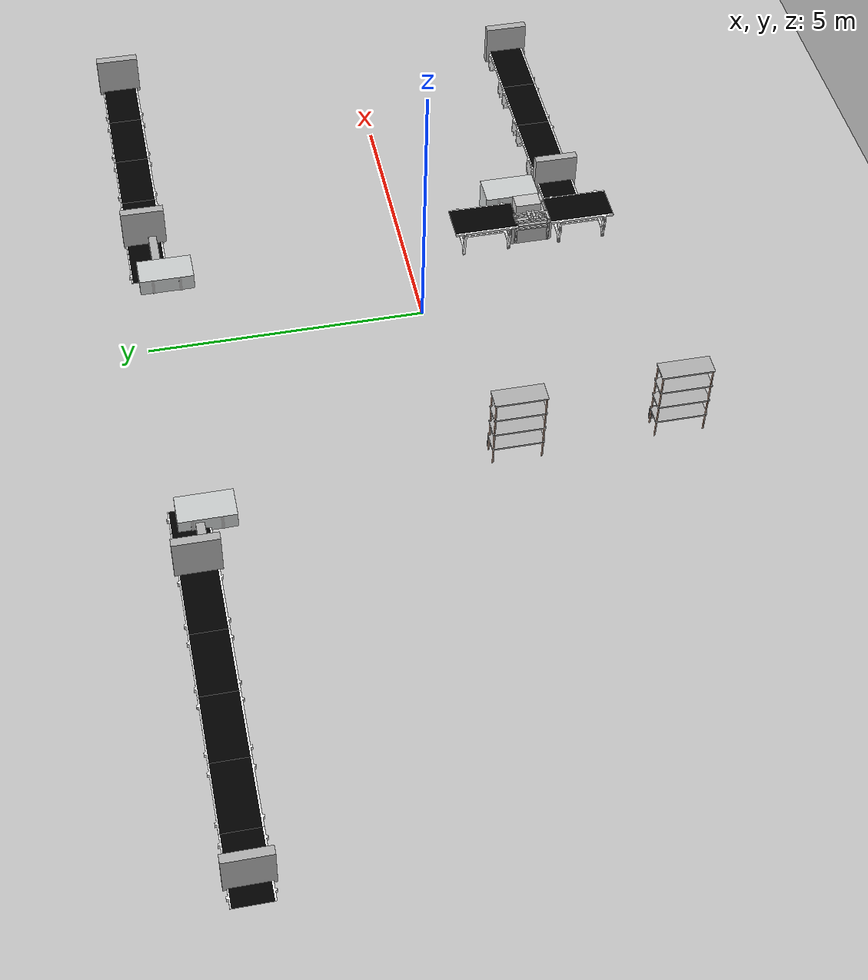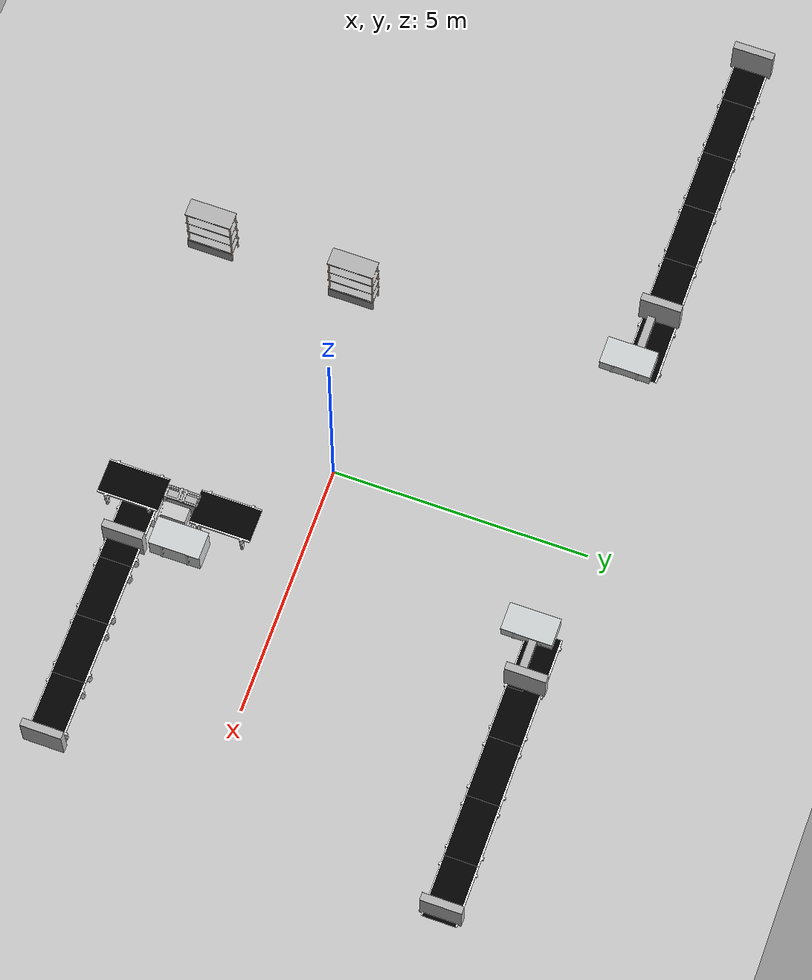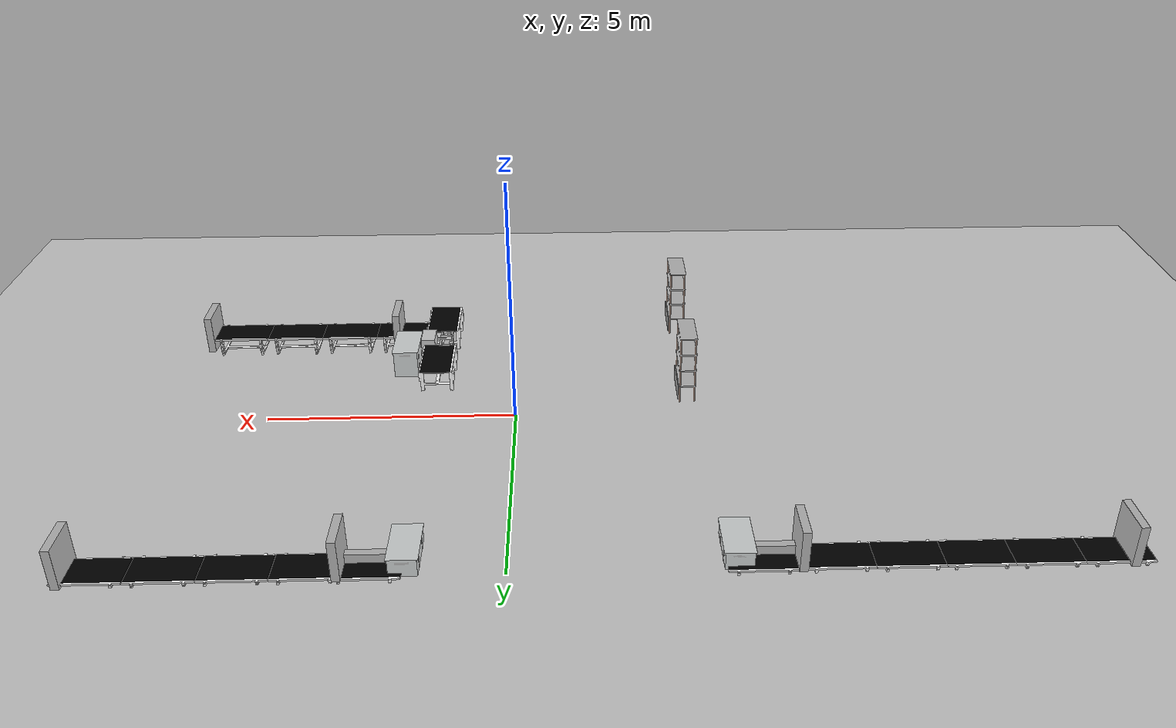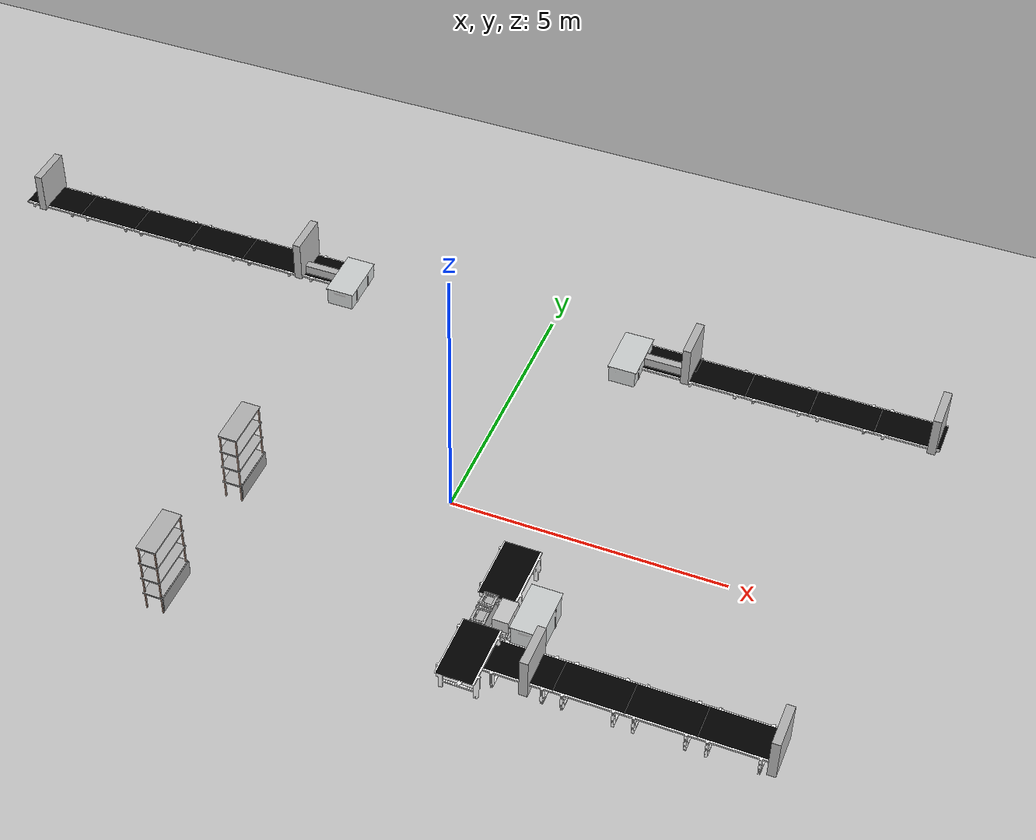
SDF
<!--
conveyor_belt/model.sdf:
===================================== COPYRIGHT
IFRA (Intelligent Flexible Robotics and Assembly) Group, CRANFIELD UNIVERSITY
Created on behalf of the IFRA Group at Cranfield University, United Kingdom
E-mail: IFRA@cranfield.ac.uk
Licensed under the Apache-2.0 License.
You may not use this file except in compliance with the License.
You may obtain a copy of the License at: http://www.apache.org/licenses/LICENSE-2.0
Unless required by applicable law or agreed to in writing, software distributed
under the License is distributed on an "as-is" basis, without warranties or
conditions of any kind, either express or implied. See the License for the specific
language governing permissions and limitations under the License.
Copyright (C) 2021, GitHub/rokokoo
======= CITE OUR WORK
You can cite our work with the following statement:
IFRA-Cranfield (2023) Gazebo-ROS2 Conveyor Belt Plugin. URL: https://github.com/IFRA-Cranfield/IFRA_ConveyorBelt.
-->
<sdf version="1.6">
 <world name="default">
  <light name="light0" type="directional">
   <pose>0 -18.818 8 0.75 -0 0</pose>
   <diffuse>0.5 0.5 0.5 1</diffuse>
   <specular>0.1 0.1 0.1 1</specular>
   <direction>0.1 0.1 -0.9</direction>
   <attenuation>
    <range>20</range>
    <constant>0.5</constant>
    <linear>0.01</linear>
    <quadratic>0.001</quadratic>
   </attenuation>
   <cast_shadows>0</cast_shadows>
  </light>
  <light name="light3" type="directional">
   <pose>3.9239 1.64974 4 0 1.2 0</pose>
   <diffuse>0.5 0.5 0.5 1</diffuse>
   <specular>0.1 0.1 0.1 1</specular>
   <direction>0.1 0.1 -0.9</direction>
   <attenuation>
    <range>20</range>
    <constant>0.5</constant>
    <linear>0.01</linear>
    <quadratic>0.001</quadratic>
   </attenuation>
   <cast_shadows>0</cast_shadows>
  </light>
  <light name="light5" type="directional">
   <pose>0.454419 12.4783 5 -0.8 0 0</pose>
   <diffuse>0.5 0.5 0.5 1</diffuse>
   <specular>0.1 0.1 0.1 1</specular>
   <direction>0.1 0.1 -0.9</direction>
   <attenuation>
    <range>20</range>
    <constant>0.5</constant>
    <linear>0.01</linear>
    <quadratic>0.001</quadratic>
   </attenuation>
   <cast_shadows>0</cast_shadows>
  </light>
  <scene>
   <shadows>false</shadows>
   <ambient>0.5 0.5 0.5 1.0</ambient>
   <grid>false</grid>
   <sky><time>22</time><sunrise>20</sunrise><sunset>21</sunset><clouds><humidity>0</humidity></clouds></sky>
  </scene>
  <include><uri>model://ground_plane</uri><pose>-1 -2 0 0 0 0</pose></include>
  <include><uri>model://rack</uri><name>rack1</name><pose>-3.53 -3.72 0.1 0 -0 3.14</pose></include>
  <include><uri>model://rack</uri><name>rack2</name><pose>-3.52 -0.88 0 0 -0 3.14</pose></include>
  <include><uri>model://arm_base</uri><name>arm_base</name><pose>1.78 -2.4 0.253 0 -0 0.0</pose></include>
  <include><uri>model://drop_table</uri><name>drop_table_2</name><pose>2.4 -2.17 0 0 -0 0.0</pose></include>
  <include>
   <uri>model://conveyor_belt</uri>
   <name>Conveyor Belt</name>
   <pose>2.568306 -3.13 -0.163364 0 -0 1.57</pose>
  </include>
  <include><uri>model://window</uri><name>window</name><pose>2.70 -3.13 -0.381 0 -0 1.57</pose></include>
  <include>
   <uri>model://conveyor_belt</uri>
   <name>Conveyor Belt 1</name>
   <pose>-4.320810 4.77 -0.48 0 -0 1.57</pose>
  </include>
  <include><uri>model://window</uri><name>window 1</name><pose>-4.98 4.750 -0.465 0 -0 1.57</pose></include>
  <include>
   <uri>model://conveyor_belt</uri>
   <name>Conveyor Belt 2</name>
   <pose>2.34 4.770056 -0.48 0 -0 1.57</pose>
  </include>
  <include><uri>model://window</uri><name>window 2</name><pose>2.80 4.750 -0.465 0 -0 1.57</pose></include>
  <include>
   <uri>model://conveyor_belt</uri>
   <name>Conveyor Belt 5</name>
   <pose>-5.63 4.75 -0.48 0 -0 1.57</pose>
  </include>
  <include>
   <uri>model://conveyor_belt</uri>
   <name>Conveyor Belt 6</name>
   <pose>-6.83 4.75 -0.48 0 -0 1.57</pose>
  </include>
  <include>
   <uri>model://conveyor_belt</uri>
   <name>Conveyor Belt 7</name>
   <pose>-8.00 4.75 -0.48 0 -0 1.57</pose>
  </include>
  <include>
   <uri>model://conveyor_belt</uri>
   <name>Conveyor Belt 8</name>
   <pose>-9.20 4.75 -0.48 0 -0 1.57</pose>
  </include>
  <include>
   <uri>model://conveyor_belt</uri>
   <name>Conveyor Belt 9</name>
   <pose>-10.40 4.75 -0.48 0 -0 1.57</pose>
  </include>
  <include><uri>model://window</uri><name>window 5</name><pose>-10.61 4.750 -0.50 0 -0 1.57</pose></include>
  <include>
   <uri>model://conveyor_belt</uri>
   <name>Conveyor Belt 10</name>
   <pose>3.33 4.75 -0.48 0 -0 1.57</pose>
  </include>
  <include>
   <uri>model://conveyor_belt</uri>
   <name>Conveyor Belt 11</name>
   <pose>4.53 4.75 -0.48 0 -0 1.57</pose>
  </include>
  <include>
   <uri>model://conveyor_belt</uri>
   <name>Conveyor Belt 12</name>
   <pose>5.73 4.75 -0.48 0 -0 1.57</pose>
  </include>
  <include>
   <uri>model://conveyor_belt</uri>
   <name>Conveyor Belt 13</name>
   <pose>6.93 4.75 -0.48 0 -0 1.57</pose>
  </include>
  <include><uri>model://window</uri><name>window 6</name><pose>7.39 4.750 -0.52 0 -0 1.57</pose></include>
  <include>
   <uri>model://conveyor_belt</uri>
   <name>Conveyor Belt 14</name>
   <pose>3.76 -3.13 -0.16 0 -0 1.57</pose>
  </include>
  <include>
   <uri>model://conveyor_belt</uri>
   <name>Conveyor Belt 15</name>
   <pose>4.95 -3.13 -0.16 0 -0 1.57</pose>
  </include>
  <include>
   <uri>model://conveyor_belt</uri>
   <name>Conveyor Belt 16</name>
   <pose>6.15 -3.13 -0.16 0 -0 1.57</pose>
  </include>
  <include><uri>model://window</uri><name>window 7</name><pose>6.78 -3.13 -0.39 0 -0 1.57</pose></include>
  <include><uri>model://window</uri><name>window 8</name><pose>2.36 4.61 -1.08 0 -0 -3.14</pose></include>
  <include><uri>model://window</uri><name>window 9</name><pose>-4.55 4.61 -1.08 0 -0 -3.14</pose></include>
  <include><uri>model://window</uri><name>window 10</name><pose>1.57 -2.38 -0.89 0 0 1.57</pose></include>
  <include><uri>model://drop_table</uri><name>drop_table_4</name><pose>1.72 4.48 -0.26 0 -0 0.0</pose></include>
  <include>
   <uri>model://drop_table</uri>
   <name>drop_table_5</name>
   <pose>-3.93 4.48 -0.26 0 -0 0.0</pose>
  </include>
  <include>
   <uri>model://drop_conveyor_belt</uri>
   <name>conveyor_belt_left</name>
   <pose>1.69 -3.33 0 0 -0 0.0</pose>
  </include>
  <include>
   <uri>model://drop_conveyor_belt</uri>
   <name>conveyor_belt_right</name>
   <pose>1.69 -1.51 0 0 -0 0.0</pose>
  </include>
  <plugin name="gazebo_link_attacher" filename="libgazebo_link_attacher.so"/>
  <plugin name="gazebo_link_ur5_attacher" filename="libgazebo_link_ur5_attacher.so"/>
  <plugin name="gazebo_ros_state" filename="libgazebo_ros_state.so">
   <ros><namespace>/_makeit</namespace></ros>
   <update_rate>1.0</update_rate>
  </plugin>
 </world>
</sdf>

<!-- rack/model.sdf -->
<sdf version='1.7'>
  <model name='rack'>
    <link name='link'>
      <inertial>
        <pose>0 0 0 0 -0 0</pose>
        <mass>0.1</mass>
        <inertia>
          <ixx>0.01857</ixx>
          <ixy>0</ixy>
          <ixz>0</ixz>
          <iyy>0.015598</iyy>
          <iyz>0</iyz>
          <izz>0.00305</izz>
        </inertia>
      </inertial>
      <self_collide>0</self_collide>
      <enable_wind>0</enable_wind>
      <kinematic>0</kinematic>
      <pose>0 0 0 0 -0 0</pose>
      <gravity>1</gravity>
      <visual name='visual1'>
        <cast_shadows>0</cast_shadows>
        <geometry>
          <mesh>
            <uri>model://rack/meshes/rack.dae</uri>
          </mesh>
        </geometry>
        <material>
          <shader type='pixel'>
            <normal_map>__default__</normal_map>
          </shader>
          <emissive>0 0 0 1</emissive>
        </material>
        <pose>0 0 0 0 -0 0</pose>
        <transparency>0</transparency>
        <pose>0 0 0 0 -0 0</pose>
        <transparency>0</transparency>
      </visual>
      <visual name='visual_2'>
        <cast_shadows>0</cast_shadows>
        <geometry>
          <box>
            <size>0.02 0.9 0.31</size>
          </box>
        </geometry>
        <material>
          <lighting>1</lighting>
          <script>
            <uri>file://media/materials/scripts/gazebo.material</uri>
            <name>Gazebo/Grey</name>
          </script>
          <shader type='pixel'>
            <normal_map>__default__</normal_map>
          </shader>
          <ambient>0.3 0.3 0.3 1</ambient>
          <diffuse>0.7 0.7 0.7 1</diffuse>
          <specular>0.01 0.01 0.01 1</specular>
          <emissive>0 0 0 1</emissive>
        </material>
        <pose>-0.185 0 0.22 0 -0 0</pose>
        <transparency>0</transparency>
      </visual>

      <collision name='collision_7'>
        <laser_retro>0</laser_retro>
        <max_contacts>10</max_contacts>
        <pose>0 0 0.36 0 1.57 1.57</pose>
        <geometry>
          <box>
            <size>0.05 0.35 0.91</size>
          </box>
        </geometry>
        <surface>
          <friction>
            <ode>
              <mu>1</mu>
              <mu2>1</mu2>
              <fdir1>0 0 0</fdir1>
              <slip1>0</slip1>
              <slip2>0</slip2>
            </ode>
            <torsional>
              <coefficient>1</coefficient>
              <patch_radius>0</patch_radius>
              <surface_radius>0</surface_radius>
              <use_patch_radius>1</use_patch_radius>
              <ode>
                <slip>0</slip>
              </ode>
            </torsional>
          </friction>
          <bounce>
            <restitution_coefficient>0</restitution_coefficient>
            <threshold>1e+06</threshold>
          </bounce>
          <contact>
            <collide_without_contact>0</collide_without_contact>
            <collide_without_contact_bitmask>1</collide_without_contact_bitmask>
            <collide_bitmask>1</collide_bitmask>
            <ode>
              <soft_cfm>0</soft_cfm>
              <soft_erp>0.2</soft_erp>
              <kp>1e15</kp>
              <kd>1e13</kd>
              <max_vel>0.01</max_vel>
              <min_depth>0</min_depth>
            </ode>
            <bullet>
              <split_impulse>1</split_impulse>
              <split_impulse_penetration_threshold>-0.01</split_impulse_penetration_threshold>
              <soft_cfm>0</soft_cfm>
              <soft_erp>0.2</soft_erp>
              <kp>1e+13</kp>
              <kd>1</kd>
            </bullet>
          </contact>
        </surface>
      </collision>

      <collision name='collision_6'>
        <laser_retro>0</laser_retro>
        <max_contacts>10</max_contacts>
        <pose>0 0 0.725 0 1.57 1.57</pose>
        <geometry>
          <box>
            <size>0.05 0.35 0.91</size>
          </box>
        </geometry>
        <surface>
          <friction>
            <ode>
              <mu>1</mu>
              <mu2>1</mu2>
              <fdir1>0 0 0</fdir1>
              <slip1>0</slip1>
              <slip2>0</slip2>
            </ode>
            <torsional>
              <coefficient>1</coefficient>
              <patch_radius>0</patch_radius>
              <surface_radius>0</surface_radius>
              <use_patch_radius>1</use_patch_radius>
              <ode>
                <slip>0</slip>
              </ode>
            </torsional>
          </friction>
          <bounce>
            <restitution_coefficient>0</restitution_coefficient>
            <threshold>1e+06</threshold>
          </bounce>
          <contact>
            <collide_without_contact>0</collide_without_contact>
            <collide_without_contact_bitmask>1</collide_without_contact_bitmask>
            <collide_bitmask>1</collide_bitmask>
            <ode>
              <soft_cfm>0</soft_cfm>
              <soft_erp>0.2</soft_erp>
              <kp>1e15</kp>
              <kd>1e13</kd>
              <max_vel>0.01</max_vel>
              <min_depth>0</min_depth>
            </ode>
            <bullet>
              <split_impulse>1</split_impulse>
              <split_impulse_penetration_threshold>-0.01</split_impulse_penetration_threshold>
              <soft_cfm>0</soft_cfm>
              <soft_erp>0.2</soft_erp>
              <kp>1e+13</kp>
              <kd>1</kd>
            </bullet>
          </contact>
        </surface>
      </collision>

      <collision name='collision_5'>
        <laser_retro>0</laser_retro>
        <max_contacts>10</max_contacts>
        <pose>0 0 1.09 0 1.57 1.57</pose>
        <geometry>
          <box>
            <size>0.05 0.35 0.91</size>
          </box>
        </geometry>
        <surface>
          <friction>
            <ode>
              <mu>1</mu>
              <mu2>1</mu2>
              <fdir1>0 0 0</fdir1>
              <slip1>0</slip1>
              <slip2>0</slip2>
            </ode>
            <torsional>
              <coefficient>1</coefficient>
              <patch_radius>0</patch_radius>
              <surface_radius>0</surface_radius>
              <use_patch_radius>1</use_patch_radius>
              <ode>
                <slip>0</slip>
              </ode>
            </torsional>
          </friction>
          <bounce>
            <restitution_coefficient>0</restitution_coefficient>
            <threshold>1e+06</threshold>
          </bounce>
          <contact>
            <collide_without_contact>0</collide_without_contact>
            <collide_without_contact_bitmask>1</collide_without_contact_bitmask>
            <collide_bitmask>1</collide_bitmask>
            <ode>
              <soft_cfm>0</soft_cfm>
              <soft_erp>0.2</soft_erp>
              <kp>1e15</kp>
              <kd>1e13</kd>
              <max_vel>0.01</max_vel>
              <min_depth>0</min_depth>
            </ode>
            <bullet>
              <split_impulse>1</split_impulse>
              <split_impulse_penetration_threshold>-0.01</split_impulse_penetration_threshold>
              <soft_cfm>0</soft_cfm>
              <soft_erp>0.2</soft_erp>
              <kp>1e+13</kp>
              <kd>1</kd>
            </bullet>
          </contact>
        </surface>
      </collision>

      <collision name='collision_3'>
        <laser_retro>0</laser_retro>
        <max_contacts>10</max_contacts>
        <pose>0 0 1.455 0 1.57 1.57</pose>
        <geometry>
          <box>
            <size>0.05 0.35 0.91</size>
          </box>
        </geometry>
        <surface>
          <friction>
            <ode>
              <mu>1</mu>
              <mu2>1</mu2>
              <fdir1>0 0 0</fdir1>
              <slip1>0</slip1>
              <slip2>0</slip2>
            </ode>
            <torsional>
              <coefficient>1</coefficient>
              <patch_radius>0</patch_radius>
              <surface_radius>0</surface_radius>
              <use_patch_radius>1</use_patch_radius>
              <ode>
                <slip>0</slip>
              </ode>
            </torsional>
          </friction>
          <bounce>
            <restitution_coefficient>0</restitution_coefficient>
            <threshold>1e+06</threshold>
          </bounce>
          <contact>
            <collide_without_contact>0</collide_without_contact>
            <collide_without_contact_bitmask>1</collide_without_contact_bitmask>
            <collide_bitmask>1</collide_bitmask>
            <ode>
              <soft_cfm>0</soft_cfm>
              <soft_erp>0.2</soft_erp>
              <kp>1e15</kp>
              <kd>1e13</kd>
              <max_vel>0.01</max_vel>
              <min_depth>0</min_depth>
            </ode>
            <bullet>
              <split_impulse>1</split_impulse>
              <split_impulse_penetration_threshold>-0.01</split_impulse_penetration_threshold>
              <soft_cfm>0</soft_cfm>
              <soft_erp>0.2</soft_erp>
              <kp>1e+13</kp>
              <kd>1</kd>
            </bullet>
          </contact>
        </surface>
      </collision>

      <collision name='collision_1'>
        <laser_retro>0</laser_retro>
        <max_contacts>10</max_contacts>
        <pose>0 0.43 0.73 0 -0 1.57</pose>
        <geometry>
          <box>
            <size>0.05 0.36 1.46</size>
          </box>
        </geometry>
        <surface>
          <friction>
            <ode>
              <mu>1</mu>
              <mu2>1</mu2>
              <fdir1>0 0 0</fdir1>
              <slip1>0</slip1>
              <slip2>0</slip2>
            </ode>
            <torsional>
              <coefficient>1</coefficient>
              <patch_radius>0</patch_radius>
              <surface_radius>0</surface_radius>
              <use_patch_radius>1</use_patch_radius>
              <ode>
                <slip>0</slip>
              </ode>
            </torsional>
          </friction>
          <bounce>
            <restitution_coefficient>0</restitution_coefficient>
            <threshold>1e+06</threshold>
          </bounce>
          <contact>
            <collide_without_contact>0</collide_without_contact>
            <collide_without_contact_bitmask>1</collide_without_contact_bitmask>
            <collide_bitmask>1</collide_bitmask>
            <ode>
              <soft_cfm>0</soft_cfm>
              <soft_erp>0.2</soft_erp>
              <kp>1e15</kp>
              <kd>1e13</kd>
              <max_vel>0.01</max_vel>
              <min_depth>0</min_depth>
            </ode>
            <bullet>
              <split_impulse>1</split_impulse>
              <split_impulse_penetration_threshold>-0.01</split_impulse_penetration_threshold>
              <soft_cfm>0</soft_cfm>
              <soft_erp>0.2</soft_erp>
              <kp>1e+13</kp>
              <kd>1</kd>
            </bullet>
          </contact>
        </surface>
      </collision>

      <collision name='collision_2'>
        <laser_retro>0</laser_retro>
        <max_contacts>10</max_contacts>
        <pose>0 -0.43 0.73 0 -0 1.57</pose>
        <geometry>
          <box>
            <size>0.05 0.36 1.46</size>
          </box>
        </geometry>
        <surface>
          <friction>
            <ode>
              <mu>1</mu>
              <mu2>1</mu2>
              <fdir1>0 0 0</fdir1>
              <slip1>0</slip1>
              <slip2>0</slip2>
            </ode>
            <torsional>
              <coefficient>1</coefficient>
              <patch_radius>0</patch_radius>
              <surface_radius>0</surface_radius>
              <use_patch_radius>1</use_patch_radius>
              <ode>
                <slip>0</slip>
              </ode>
            </torsional>
          </friction>
          <bounce>
            <restitution_coefficient>0</restitution_coefficient>
            <threshold>1e+06</threshold>
          </bounce>
          <contact>
            <collide_without_contact>0</collide_without_contact>
            <collide_without_contact_bitmask>1</collide_without_contact_bitmask>
            <collide_bitmask>1</collide_bitmask>
            <ode>
              <soft_cfm>0</soft_cfm>
              <soft_erp>0.2</soft_erp>
              <kp>1e15</kp>
              <kd>1e13</kd>
              <max_vel>0.01</max_vel>
              <min_depth>0</min_depth>
            </ode>
            <bullet>
              <split_impulse>1</split_impulse>
              <split_impulse_penetration_threshold>-0.01</split_impulse_penetration_threshold>
              <soft_cfm>0</soft_cfm>
              <soft_erp>0.2</soft_erp>
              <kp>1e+13</kp>
              <kd>1</kd>
            </bullet>
          </contact>
        </surface>
      </collision>

      <collision name='collision'>
        <laser_retro>0</laser_retro>
        <max_contacts>10</max_contacts>
        <pose>-0.185 0 0.22 0 -0 0</pose>
        <geometry>
          <box>
            <size>0.02 0.9 0.31</size>
          </box>
        </geometry>
        <surface>
          <friction>
            <ode>
              <mu>1</mu>
              <mu2>1</mu2>
              <fdir1>0 0 0</fdir1>
              <slip1>0</slip1>
              <slip2>0</slip2>
            </ode>
            <torsional>
              <coefficient>1</coefficient>
              <patch_radius>0</patch_radius>
              <surface_radius>0</surface_radius>
              <use_patch_radius>1</use_patch_radius>
              <ode>
                <slip>0</slip>
              </ode>
            </torsional>
          </friction>
          <bounce>
            <restitution_coefficient>0</restitution_coefficient>
            <threshold>1e+06</threshold>
          </bounce>
          <contact>
            <collide_without_contact>0</collide_without_contact>
            <collide_without_contact_bitmask>1</collide_without_contact_bitmask>
            <collide_bitmask>1</collide_bitmask>
            <ode>
              <soft_cfm>0</soft_cfm>
              <soft_erp>0.2</soft_erp>
              <kp>1e15</kp>
              <kd>1e13</kd>
              <max_vel>0.01</max_vel>
              <min_depth>0</min_depth>
            </ode>
            <bullet>
              <split_impulse>1</split_impulse>
              <split_impulse_penetration_threshold>-0.01</split_impulse_penetration_threshold>
              <soft_cfm>0</soft_cfm>
              <soft_erp>0.2</soft_erp>
              <kp>1e+13</kp>
              <kd>1</kd>
            </bullet>
          </contact>
        </surface>
      </collision>

    </link>
    <static>0</static>
    <allow_auto_disable>1</allow_auto_disable>
  </model>
</sdf>

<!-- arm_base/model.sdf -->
<sdf version='1.7'>
  <model name='arm_base'>
    <link name='link'>
      <inertial>
        <mass>1</mass>
        <inertia>
          <ixx>0.166667</ixx>
          <ixy>0</ixy>
          <ixz>0</ixz>
          <iyy>0.166667</iyy>
          <iyz>0</iyz>
          <izz>0.166667</izz>
        </inertia>
        <pose>0 0 0 0 -0 0</pose>
      </inertial>
      <self_collide>0</self_collide>
      <enable_wind>0</enable_wind>
      <kinematic>0</kinematic>
      <pose>0 0 0 0 -0 0</pose>
      <gravity>1</gravity>
      <visual name='visual1'>
        <cast_shadows>0</cast_shadows>
        <geometry>
          <mesh>
            <uri>model://arm_base/meshes/arm_base.dae</uri>
          </mesh>
        </geometry>
        <material>
          <shader type='pixel'>
            <normal_map>__default__</normal_map>
          </shader>
          <emissive>0 0 0 1</emissive>

        </material>
        <pose>0 0 -0.25 0 -0 0</pose>
        <transparency>0</transparency>
        <pose>0 0 0 0 -0 0</pose>
        <transparency>0</transparency>
      </visual>
      <collision name='collision'>
        <laser_retro>0</laser_retro>
        <max_contacts>10</max_contacts>
        <pose>0 0 0 0 -0 0</pose>
        <geometry>
          <box>
            <size>0.7 0.7 0.52</size>
          </box>
        </geometry>
        <surface>
          <friction>
            <ode>
              <mu>1</mu>
              <mu2>1</mu2>
              <fdir1>0 0 0</fdir1>
              <slip1>0</slip1>
              <slip2>0</slip2>
            </ode>
            <torsional>
              <coefficient>1</coefficient>
              <patch_radius>0</patch_radius>
              <surface_radius>0</surface_radius>
              <use_patch_radius>1</use_patch_radius>
              <ode>
                <slip>0</slip>
              </ode>
            </torsional>
          </friction>
          <bounce>
            <restitution_coefficient>0</restitution_coefficient>
            <threshold>1e+06</threshold>
          </bounce>
          <contact>
            <collide_without_contact>0</collide_without_contact>
            <collide_without_contact_bitmask>1</collide_without_contact_bitmask>
            <collide_bitmask>1</collide_bitmask>
            <ode>
              <soft_cfm>0</soft_cfm>
              <soft_erp>0.2</soft_erp>
              <kp>1e+13</kp>
              <kd>1</kd>
              <max_vel>0.01</max_vel>
              <min_depth>0</min_depth>
            </ode>
            <bullet>
              <split_impulse>1</split_impulse>
              <split_impulse_penetration_threshold>-0.01</split_impulse_penetration_threshold>
              <soft_cfm>0</soft_cfm>
              <soft_erp>0.2</soft_erp>
              <kp>1e+13</kp>
              <kd>1</kd>
            </bullet>
          </contact>
        </surface>
      </collision>
    </link>
    <static>1</static>
    <allow_auto_disable>1</allow_auto_disable>
  </model>
</sdf>

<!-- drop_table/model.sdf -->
<sdf version='1.7'>
  <model name='drop_table'>
    <link name='link'>
      <inertial>
        <mass>1</mass>
        <inertia>
          <ixx>0.166667</ixx>
          <ixy>0</ixy>
          <ixz>0</ixz>
          <iyy>0.166667</iyy>
          <iyz>0</iyz>
          <izz>0.166667</izz>
        </inertia>
        <pose>0 0 0 0 -0 0</pose>
      </inertial>
      <self_collide>0</self_collide>
      <enable_wind>0</enable_wind>
      <kinematic>0</kinematic>
      <pose>0 0 0 0 -0 0</pose>
      <gravity>1</gravity>
      <visual name='visual1'>
        <cast_shadows>0</cast_shadows>
        <geometry>
          <mesh>
            <uri>model://drop_table/meshes/table.dae</uri>
          </mesh>
        </geometry>
        <material>
          <shader type='pixel'>
            <normal_map>__default__</normal_map>
          </shader>
          <emissive>0 0 0 1</emissive>

        </material>
        <pose>0 0 0 0 -0 0</pose>
        <transparency>0</transparency>
        <pose>0 0 0 0 -0 0</pose>
        <transparency>0</transparency>
      </visual>
      <collision name='collision'>
        <laser_retro>0</laser_retro>
        <max_contacts>10</max_contacts>
        <pose>0 0 0.29 0 -0 0</pose>
        <geometry>
          <box>
            <size>0.5 1 0.58</size>
          </box>
        </geometry>
        <surface>
          <friction>
            <ode>
              <mu>1</mu>
              <mu2>1</mu2>
              <fdir1>0 0 0</fdir1>
              <slip1>0</slip1>
              <slip2>0</slip2>
            </ode>
            <torsional>
              <coefficient>1</coefficient>
              <patch_radius>0</patch_radius>
              <surface_radius>0</surface_radius>
              <use_patch_radius>1</use_patch_radius>
              <ode>
                <slip>0</slip>
              </ode>
            </torsional>
          </friction>
          <bounce>
            <restitution_coefficient>0</restitution_coefficient>
            <threshold>1e+06</threshold>
          </bounce>
          <contact>
            <collide_without_contact>0</collide_without_contact>
            <collide_without_contact_bitmask>1</collide_without_contact_bitmask>
            <collide_bitmask>1</collide_bitmask>
            <ode>
              <soft_cfm>0</soft_cfm>
              <soft_erp>0.2</soft_erp>
              <kp>1e+13</kp>
              <kd>1</kd>
              <max_vel>0.01</max_vel>
              <min_depth>0</min_depth>
            </ode>
            <bullet>
              <split_impulse>1</split_impulse>
              <split_impulse_penetration_threshold>-0.01</split_impulse_penetration_threshold>
              <soft_cfm>0</soft_cfm>
              <soft_erp>0.2</soft_erp>
              <kp>1e+13</kp>
              <kd>1</kd>
            </bullet>
          </contact>
        </surface>
      </collision>
    </link>
    <static>1</static>
    <allow_auto_disable>1</allow_auto_disable>
  </model>
</sdf>

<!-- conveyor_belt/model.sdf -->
<sdf version="1.4">

    <model name="conveyor_belt">

        <model name="conveyorbelt_fixed">

            <static>true</static>

            <link name="belt_visual">
                <visual name="visual">
                    <geometry>
                        <mesh>
                            <scale>1 1 1</scale>
                            <uri>model://conveyor_belt/meshes/conveyor_belt.dae</uri>
                        </mesh>
                    </geometry>
                </visual>
                <collision name="collision">
                    <origin xyz="0.0 0.0 0" rpy="0.0 0.0 0.0"/>
                    <geometry>
                        <mesh>
                            <scale>1 1 1</scale>
                            <uri>model://conveyor_belt/meshes/conveyor_belt.dae</uri>
                        </mesh>
                    </geometry>
                </collision>
            </link>

        </model>

        <joint name="belt_joint" type="prismatic">
            <parent>conveyorbelt_fixed::belt_visual</parent>
            <child>conveyorbelt_moving::belt_moving</child>
            <axis>
                <xyz>0 1 0</xyz>
                <limit>
                    <lower>0.0</lower>
                    <upper>0.01</upper>
                </limit>
            </axis>
        </joint>

        <plugin name="ros2_conveyorbelt_plugin" filename="libros2_conveyorbelt_plugin.so" >
            <ros>
                <namespace></namespace>
            </ros>
            <max_velocity>1.0</max_velocity>
            <publish_rate>1000</publish_rate>
        </plugin>

    </model>

</sdf>

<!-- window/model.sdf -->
<sdf version='1.6'>
  <model name='window'>
    <link name='link_2'>
         <visual name='visual'>
        <pose frame=''>0 0 0.9 0 -0 0</pose>
        <geometry>
          <box>
            <size>0.8 0.15 0.8</size>
          </box>
        </geometry>
         <material>
          <lighting>1</lighting>
          <ambient>
            <color sid="emission">0 0 0 1</color>
          </ambient>
          <emission>
            <color sid="emission">0 0 0 1</color>
          </emission>
          <diffuse>
            <color sid="diffuse">0 0 0 1</color>
          </diffuse>

        </material>
        <cast_shadows>1</cast_shadows>
        <transparency>0</transparency>
      </visual>
      <collision name='collision'>
        <laser_retro>0</laser_retro>
        <max_contacts>10</max_contacts>
        <pose frame=''>0 0 0.9 0 -0 0</pose>
        <geometry>
          <box>
            <size>0.8 0.15 0.8</size>
          </box>
        </geometry>

      </collision>
    </link>
    <static>1</static>
    <allow_auto_disable>1</allow_auto_disable>
  </model>
</sdf>

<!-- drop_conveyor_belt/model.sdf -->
<sdf version="1.4">

    <model name="conveyor_belt_drop">

        <model name="conveyorbelt_fixed">

            <static>true</static>

            <link name="belt_visual">
                <visual name="visual">
                    <geometry>
                        <mesh>
                            <scale>1 1 1</scale>
                            <uri>model://drop_conveyor_belt/meshes/conveyor_belt.dae</uri>
                        </mesh>
                    </geometry>
                </visual>
                <collision name="collision">
                    <origin xyz="0.0 0.0 0" rpy="0.0 0.0 0.0"/>
                    <geometry>
                        <mesh>
                            <scale>1 1 1</scale>
                            <uri>model://drop_conveyor_belt/meshes/conveyor_belt.dae</uri>
                        </mesh>
                    </geometry>
                </collision>
            </link>

        </model>

        <joint name="belt_joint" type="prismatic">
            <parent>conveyorbelt_fixed::belt_visual</parent>
            <child>conveyorbelt_moving::belt_moving</child>
            <axis>
                <xyz>0 1 0</xyz>
                <limit>
                    <lower>0.0</lower>
                    <upper>0.01</upper>
                </limit>
            </axis>
        </joint>

    </model>

</sdf>
